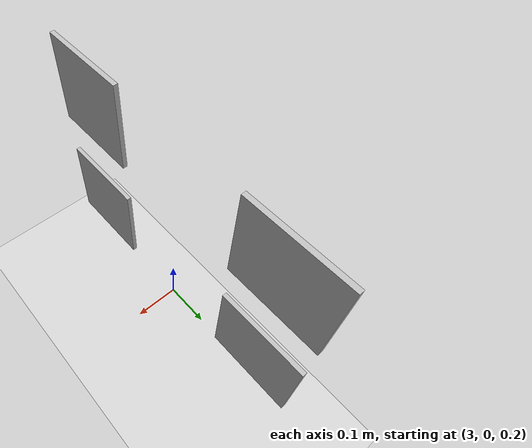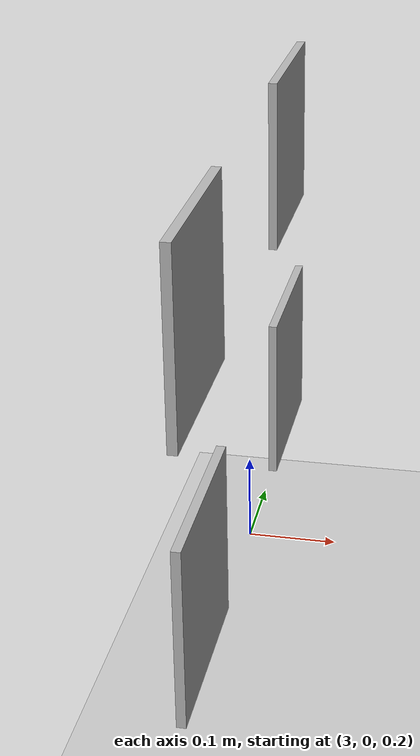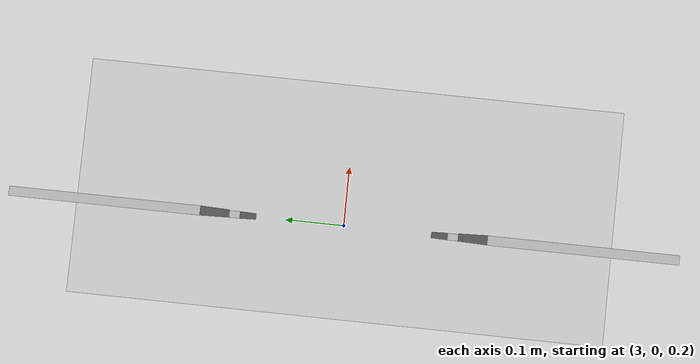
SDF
<?xml version="1.0" ?>
<sdf version="1.9">
  <world name="four_whycode_world">

    <scene>
      <shadows>false</shadows>
    </scene>
    <light name="sun_direct" type="directional">
      <cast_shadows>false</cast_shadows>
      <pose>0 0 10 0 0 0</pose>
      <diffuse>1 1 1 1</diffuse>
      <specular>0.2 0.2 0.2 1</specular>
      <direction>-0.5 0.1 -1</direction>
    </light>
    <plugin filename="gz-sim-physics-system" name="gz::sim::systems::Physics"/>
    <plugin filename="gz-sim-scene-broadcaster-system" name="gz::sim::systems::SceneBroadcaster">
      <dynamic_pose_hertz>30</dynamic_pose_hertz>
      <state_hertz>30</state_hertz>
    </plugin>
    <plugin filename="gz-sim-sensors-system" name="gz::sim::systems::Sensors">
      <render_engine>ogre2</render_engine>
    </plugin>
    <plugin filename="gz-sim-user-commands-system" name="gz::sim::systems::UserCommands"/>
    <include>
      <uri>https://fuel.gazebosim.org/1.0/OpenRobotics/models/Ground%20Plane</uri>
    </include>
    <include>
      <uri>model://WhyCode_1</uri>
      <pose>3.0 0.25 0.3 0 1.57 0.0</pose>
    </include>
    <include>
      <uri>model://WhyCode_2</uri>
      <pose>3.0 -0.25 0.3 0 1.57 0.0</pose>
    </include>
    <!-- Spawn two more codes exactly above these two markers -->
    <include>
      <uri>model://WhyCode_3</uri>
      <pose>3.0 0.25 0.6 0 1.57 0.0</pose>
    </include>
    <include>
      <uri>model://WhyCode_4</uri>
      <pose>3.0 -0.25 0.6 0 1.57 0.0</pose>
    </include>

  </world>
</sdf>

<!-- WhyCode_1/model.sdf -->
<sdf version='1.9'>
  <model name='WhyCode_1'>
    <link name='main'>
    <pose>0 0 0 0 0 0</pose>
      <visual name='main_Visual'>
        <geometry>
          <box>
          <size>0.2 0.2 0.01</size>
          </box>
        </geometry>
                      <material>
             <pbr>
               <metal>
                 <albedo_map>model://WhyCode_1/materials/textures/whycode_1.png</albedo_map>
      <emissive_map>model://WhyCode_1/materials/textures/whycode_1.png</emissive_map>
                 <roughness>1.0</roughness>
                 <metalness>0.0</metalness>
               </metal>
             </pbr>
           </material>
      </visual>
     </link>
    <static>1</static>
  </model>
</sdf>

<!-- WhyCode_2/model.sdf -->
<sdf version='1.9'>
  <model name='WhyCode_2'>
    <link name='main'>
    <pose>0 0 0 0 0 0</pose>
      <visual name='main_Visual'>
        <geometry>
          <box>
          <size>0.2 0.2 0.01</size>
          </box>
        </geometry>
                      <material>
             <pbr>
               <metal>
                 <albedo_map>model://WhyCode_2/materials/textures/whycode_2.png</albedo_map>
      <emissive_map>model://WhyCode_2/materials/textures/whycode_2.png</emissive_map>
                 <roughness>1.0</roughness>
                 <metalness>0.0</metalness>
               </metal>
             </pbr>
           </material>
      </visual>
     </link>
    <static>1</static>
  </model>
</sdf>

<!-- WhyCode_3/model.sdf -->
<sdf version='1.9'>
  <model name='WhyCode_3'>
    <link name='main'>
    <pose>0 0 0 0 0 0</pose>
      <visual name='main_Visual'>
        <geometry>
          <box>
          <size>0.2 0.2 0.01</size>
          </box>
        </geometry>
                      <material>
             <pbr>
               <metal>
                 <albedo_map>model://WhyCode_3/materials/textures/whycode_3.png</albedo_map>
      <emissive_map>model://WhyCode_3/materials/textures/whycode_3.png</emissive_map>
                 <roughness>1.0</roughness>
                 <metalness>0.0</metalness>
               </metal>
             </pbr>
           </material>
      </visual>
     </link>
    <static>1</static>
  </model>
</sdf>

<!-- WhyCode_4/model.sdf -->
<sdf version='1.9'>
  <model name='WhyCode_4'>
    <link name='main'>
    <pose>0 0 0 0 0 0</pose>
      <visual name='main_Visual'>
        <geometry>
          <box>
          <size>0.2 0.2 0.01</size>
          </box>
        </geometry>
                      <material>
             <pbr>
               <metal>
                 <albedo_map>model://WhyCode_4/materials/textures/whycode_4.png</albedo_map>
      <emissive_map>model://WhyCode_4/materials/textures/whycode_4.png</emissive_map>
                 <roughness>1.0</roughness>
                 <metalness>0.0</metalness>
               </metal>
             </pbr>
           </material>
      </visual>
     </link>
    <static>1</static>
  </model>
</sdf>
